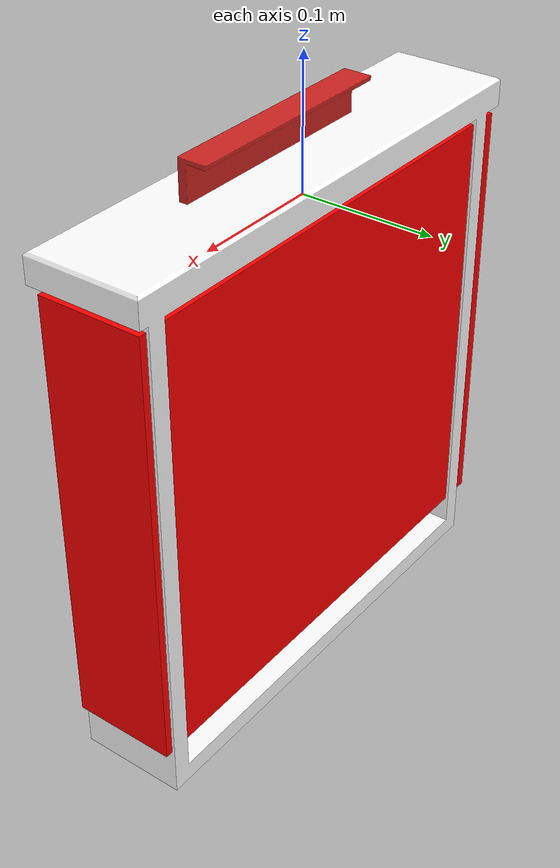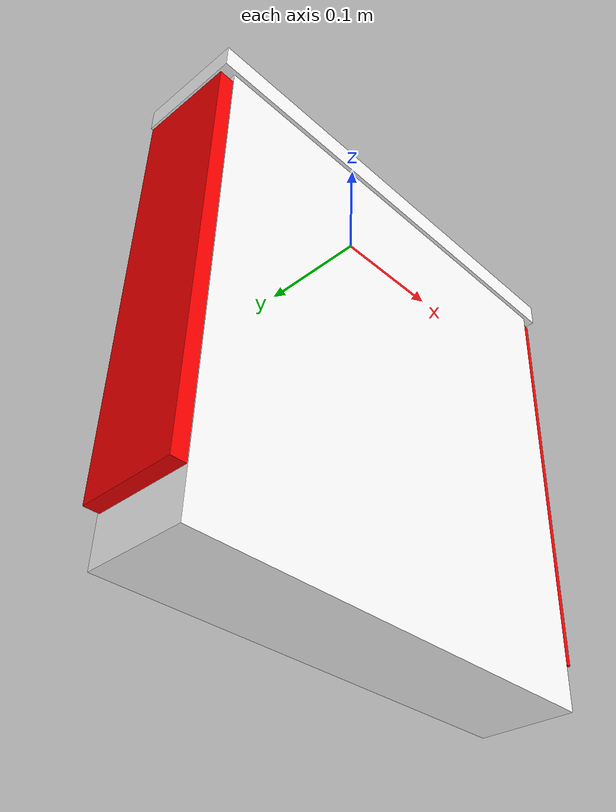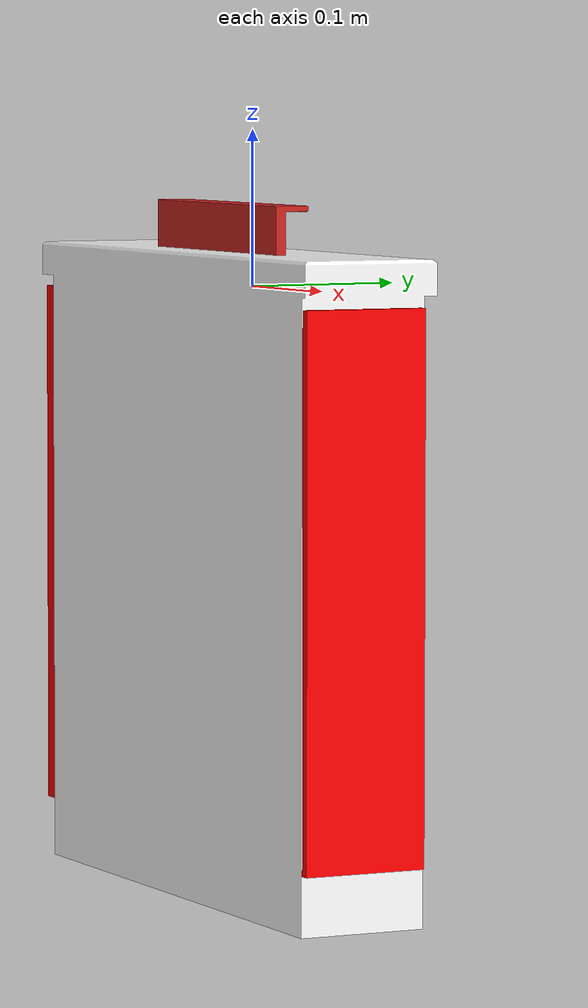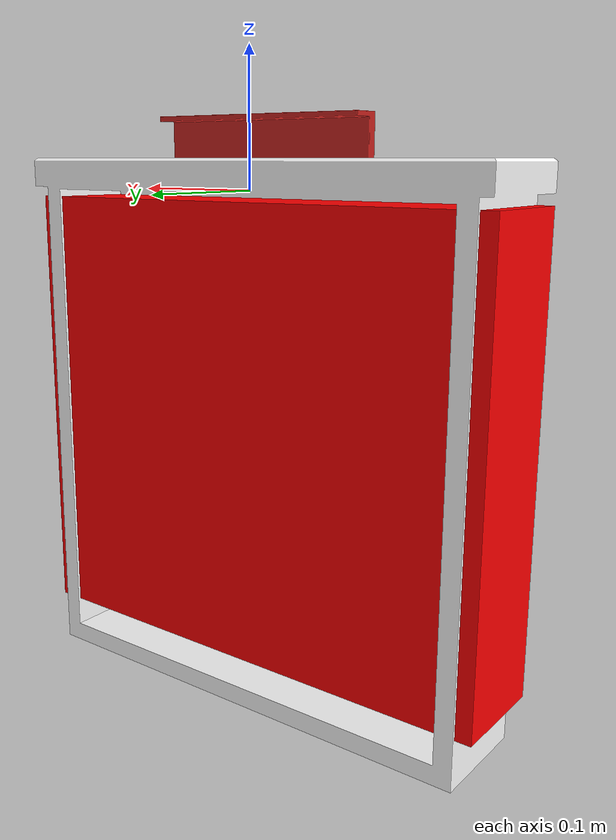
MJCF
<mujoco model="Drawer_51f98f55">
  <compiler autolimits="true" boundmass="0.01" angle="radian"/>
  <default>
    <default class="/">
      <default class="__VISUAL_MJT__">
        <geom contype="0" conaffinity="0" group="0"/>
      </default>
      <default class="__STRUCTURAL_MJT__">
        <geom contype="8" conaffinity="15" group="4" friction="0.90000000000000002 0.90000000000000002 0.001" solref="0.025000000000000001 1" solimp="0.998 0.998 0.001"/>
      </default>
      <default class="__DYNAMIC_MJT__">
        <geom contype="1" conaffinity="15" group="4" friction="0.90000000000000002 0.90000000000000002 0.001" solref="0.025000000000000001 1" solimp="0.998 0.998 0.001"/>
      </default>
    </default>
  </default>
  <asset>
    <material name="material_Default-Material" class="/" specular="0.5" shininess="0.5" rgba="1 1 1 1"/>
    <mesh name="Drawer_51f98f55_DrawerBaseTop1_(WWW3)_(WWW2)_01_bbfc11c5" class="/" file="Drawer_51f98f55_DrawerBaseTop1_(WWW3)_(WWW2)_01_bbfc11c5/Drawer_51f98f55_DrawerBaseTop1_(WWW3)_(WWW2)_01_bbfc11c5.obj" scale="1 1 1" inertia="legacy"/>
    <texture name="HammeredMetal_AlbedoTransparency_2" type="2d" file="HammeredMetal_AlbedoTransparency.png"/>
    <material name="material_HammeredMetal_AlbedoTransparency_2" class="/" texture="HammeredMetal_AlbedoTransparency_2" specular="0.5" shininess="0.5" rgba="1 0.93407709999999999 0.81617649999999997 1"/>
    <mesh name="Drawer_51f98f55_handle_3_178mm_01_6ea2b3f9" class="/" file="Drawer_51f98f55_handle_3_178mm_01_6ea2b3f9/Drawer_51f98f55_handle_3_178mm_01_6ea2b3f9.obj" scale="1 1 1" inertia="legacy"/>
  </asset>
  <worldbody>
    <body name="Drawer_51f98f55">
      <body name="Drawer_51f98f55_DrawerBaseTop1_(WWW3)_(WWW2)_01_bbfc11c5" pos="-0.022900016978383064 -0.024600028991699219 0.0010000485926866531" quat="1 0 0 0">
        <geom name="Drawer_51f98f55_DrawerBaseTop1_(WWW3)_(WWW2)_01_bbfc11c5" class="__VISUAL_MJT__" type="mesh" material="material_Default-Material" mesh="Drawer_51f98f55_DrawerBaseTop1_(WWW3)_(WWW2)_01_bbfc11c5"/>
        <joint name="Drawer_51f98f55_joint" class="/" type="slide" pos="0.02290000207722187 0.024600028991699219 -0.0010000485926866531" axis="0 0 1" stiffness="0" range="0 0.29899999999999999" damping="0.10000000000000001" frictionloss="0"/>
        <site name="Drawer_51f98f55_DrawerBaseTop1_(WWW3)_(WWW2)_01_bbfc11c5_Receptacle_0" class="/" type="box" rgba="1 0 0 1" size="0.19813638925552368 0.040375705808401108 0.1731330007314682" pos="0.016820918768644333 0.0092935562133789062 -0.18077459931373596" quat="0 1 0 0"/>
        <geom name="Drawer_51f98f55_DrawerBaseTop1_(WWW3)_(WWW2)_01_bbfc11c5_PrimitiveCollider_0" class="__DYNAMIC_MJT__" type="box" size="0.20168137550354004 0.046968668699264526 0.01138788741081953" rgba="0 1 0 1" pos="0.022900018841028214 0.0093401074409484863 0.010400889441370964" quat="0 1 0 0"/>
        <geom name="Drawer_51f98f55_DrawerBaseTop1_(WWW3)_(WWW2)_01_bbfc11c5_PrimitiveCollider_1" class="__DYNAMIC_MJT__" type="box" size="0.20168137550354004 0.044112764298915863 0.0073814410716295242" rgba="0 1 0 1" pos="0.02290000393986702 0.0069411396980285645 -0.36086231470108032" quat="0 1 0 0"/>
        <geom name="Drawer_51f98f55_DrawerBaseTop1_(WWW3)_(WWW2)_01_bbfc11c5_PrimitiveCollider_2" class="__DYNAMIC_MJT__" type="box" size="0.19288802146911621 0.043673891574144363 0.0062090875580906868" rgba="0 1 0 1" pos="-0.17169561982154846 0.0073800086975097656 -0.17537367343902588" quat="0 0.70710678118654757 0 0.70710678118654757"/>
        <geom name="Drawer_51f98f55_DrawerBaseTop1_(WWW3)_(WWW2)_01_bbfc11c5_PrimitiveCollider_3" class="__DYNAMIC_MJT__" type="box" size="0.19288811087608337 0.043673891574144363 0.0062090903520584106" rgba="0 1 0 1" pos="0.21709562838077545 0.0073800086975097656 -0.17537359893321991" quat="0 0.70710678118654757 0 0.70710678118654757"/>
        <geom name="Drawer_51f98f55_DrawerBaseTop1_(WWW3)_(WWW2)_01_bbfc11c5_PrimitiveCollider_4" class="__DYNAMIC_MJT__" type="box" size="0.1928880512714386 0.19965550303459167 0.0111554" rgba="0 1 0 1" pos="0.0222899429500103 -0.0140465 -0.17537358403205872" quat="-0.49999994039536055 0.49999999999999822 0.50000005960463589 0.49999999999999822"/>
        <body name="Drawer_51f98f55_handle_3_178mm_01_6ea2b3f9" pos="0.026000011712312698 0 0.019999980926513672" quat="1 0 0 0">
          <geom name="Drawer_51f98f55_handle_3_178mm_01_6ea2b3f9" class="__VISUAL_MJT__" type="mesh" material="material_HammeredMetal_AlbedoTransparency_2" mesh="Drawer_51f98f55_handle_3_178mm_01_6ea2b3f9"/>
          <geom name="Drawer_51f98f55_handle_3_178mm_01_6ea2b3f9_PrimitiveCollider_0" class="__DYNAMIC_MJT__" type="box" size="0.088752105832099915 0.0035549115855246782 0.016431532800197601" rgba="0 1 0 1" pos="1.941927507687069e-09 0 0.016290070489048958" quat="0 1 0 0"/>
          <geom name="Drawer_51f98f55_handle_3_178mm_01_6ea2b3f9_PrimitiveCollider_1" class="__DYNAMIC_MJT__" type="box" size="0.088752105832099915 0.0077598136849701405 0.0019227261655032635" rgba="0 1 0 1" pos="-2.6130823727044117e-08 0.011284887790679932 0.030798796564340591" quat="0 1 0 0"/>
        </body>
      </body>
    </body>
  </worldbody>
  <contact>
    <exclude name="//unnamed_contact_0" body1="Drawer_51f98f55_DrawerBaseTop1_(WWW3)_(WWW2)_01_bbfc11c5" body2="Drawer_51f98f55_handle_3_178mm_01_6ea2b3f9"/>
  </contact>
</mujoco>
